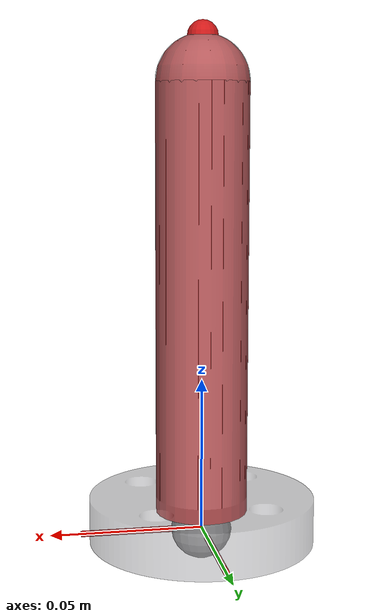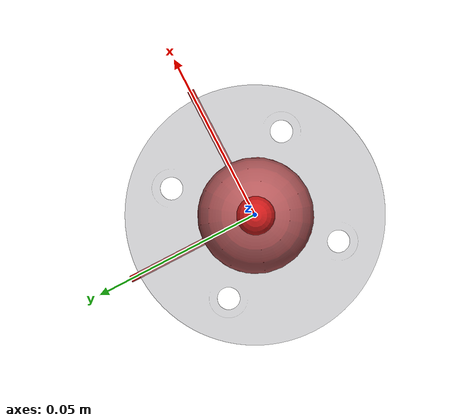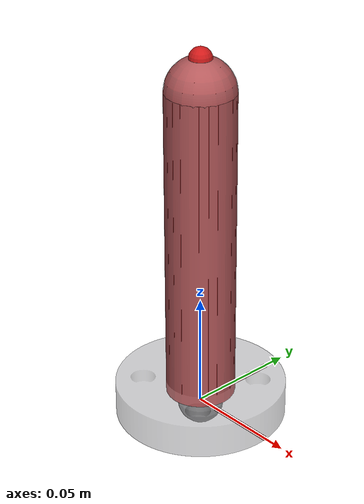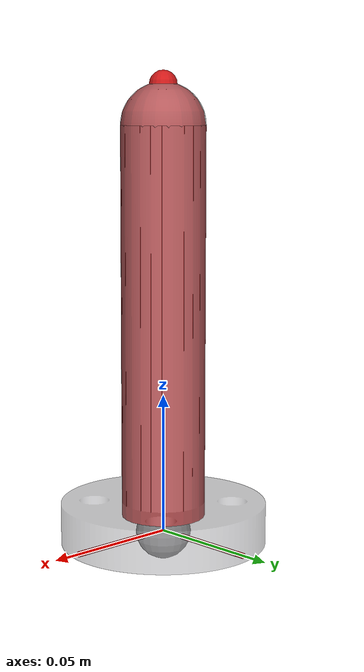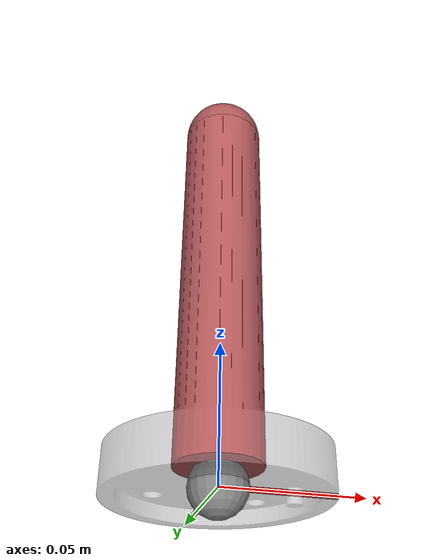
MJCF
<mujoco model="pocky_stick">
  <compiler angle="radian" meshdir="." autolimits="true"/>

  <default>
    <default class="visual">
      <geom type="mesh" contype="0" conaffinity="0" group="2"/>
    </default>
  </default>

  <asset>
    <material name="stick_gray" rgba="0.627451 0.627451 0.643137 0.5" specular="0.35" shininess="0.45"/>
    <material name="stick_red" rgba="0.8 0.1 0.1 1" specular="0.35" shininess="0.45"/>
    <mesh name="stick_mesh" file="stick.obj"/>
  </asset>

  <worldbody>
    <body name="stick" gravcomp="1">

      <!-- add visual small indicator for xyz axis -->
      <geom name="stick_xyz_indicator" size="0.01" pos="0 0 0"/>
      <!-- xaxis -->
        <geom name="stick_xaxis" type="cylinder" size="0.001 0.02" pos="0.02 0 0" euler="0 1.5708 0" material="stick_red"/>
        <!-- yaxis -->
        <geom name="stick_yaxis" type="cylinder" size="0.001 0.02" pos="0 0.0 0.02" euler="0 0 1.5708" material="stick_red"/>
        <!-- zaxis -->
        <geom name="stick_zaxis" type="cylinder" size="0.001 0.02" pos="0 0.02 0" euler="1.5708 0 0" material="stick_red"/>

      <geom name="stick_visual" class="visual" mesh="stick_mesh" pos="0 0 0.005" material="stick_gray"/>

      <!-- Add primitive collision geoms here. -->
      <!-- cylinder in z direction, 20mm, 15mm radius -->
    <geom name="stick_collision" type="cylinder" size="0.015 0.07" pos="0 0 0.076" material="stick_red"/>
    <!-- and then a sphere -->
    <geom name="stick_collision_sphere" type="sphere" size="0.015" pos="0 0 0.146" material="stick_red"/>
          <site name="stick_tip" pos="0 0 0.16" size="0.005" material="stick_red"/>
    </body>
  </worldbody>
</mujoco>
